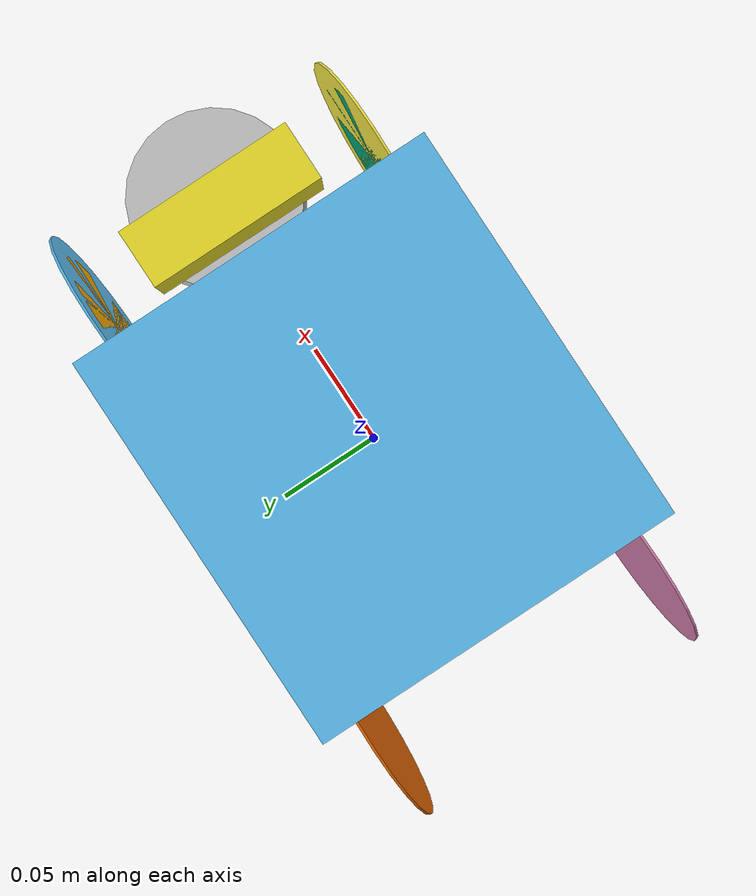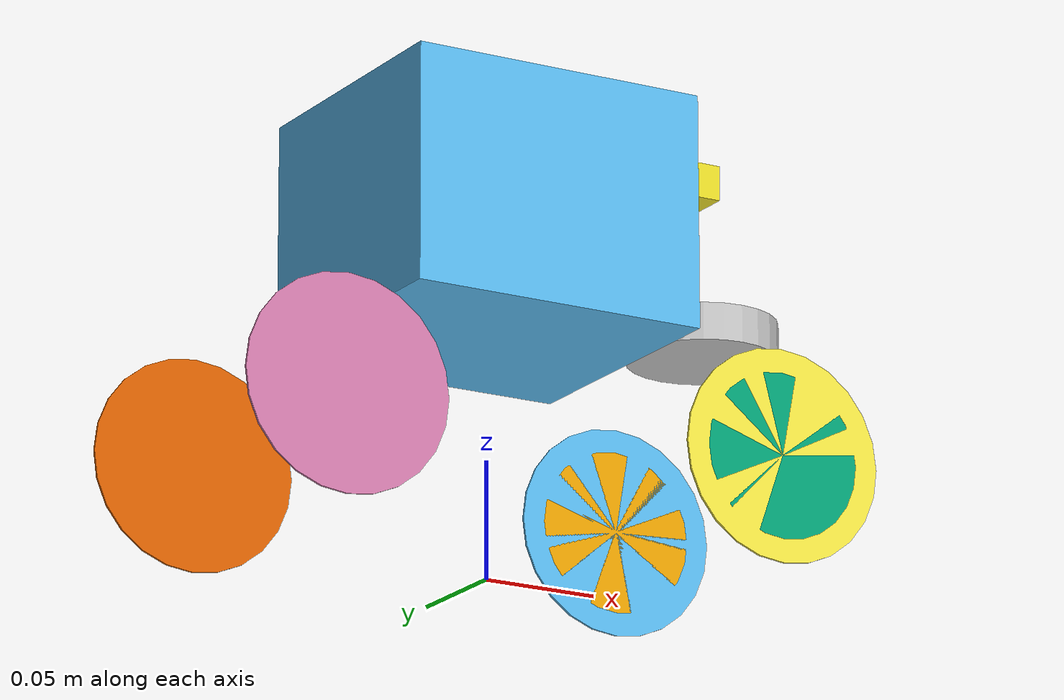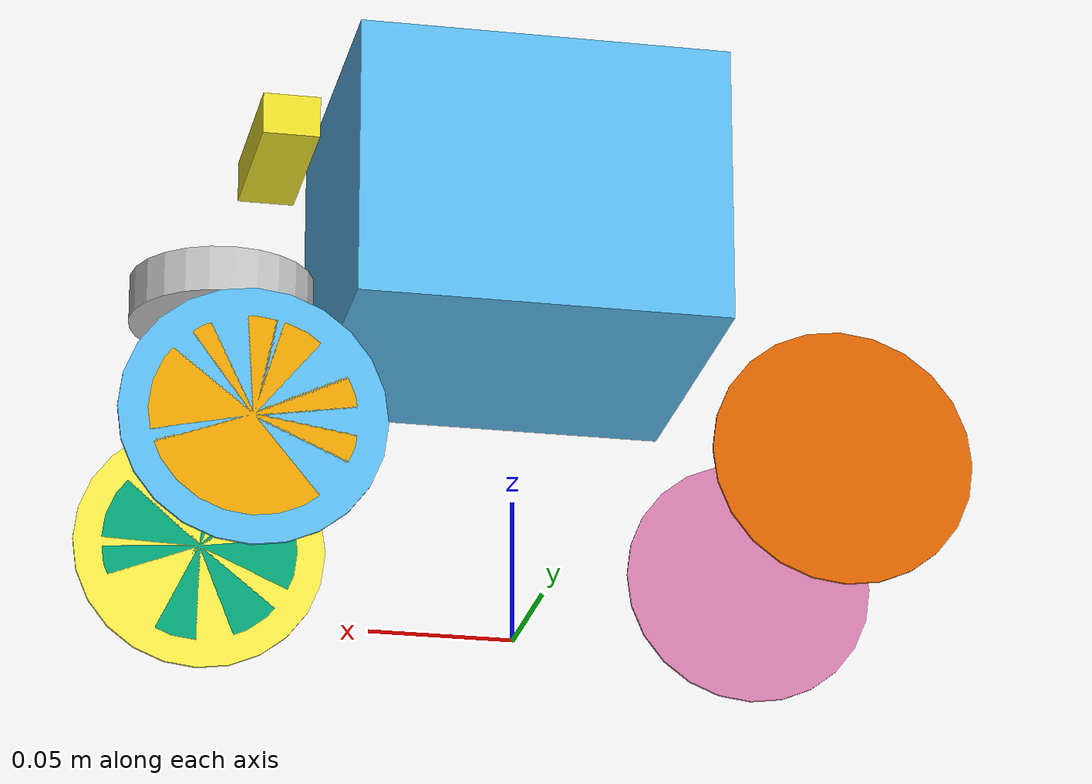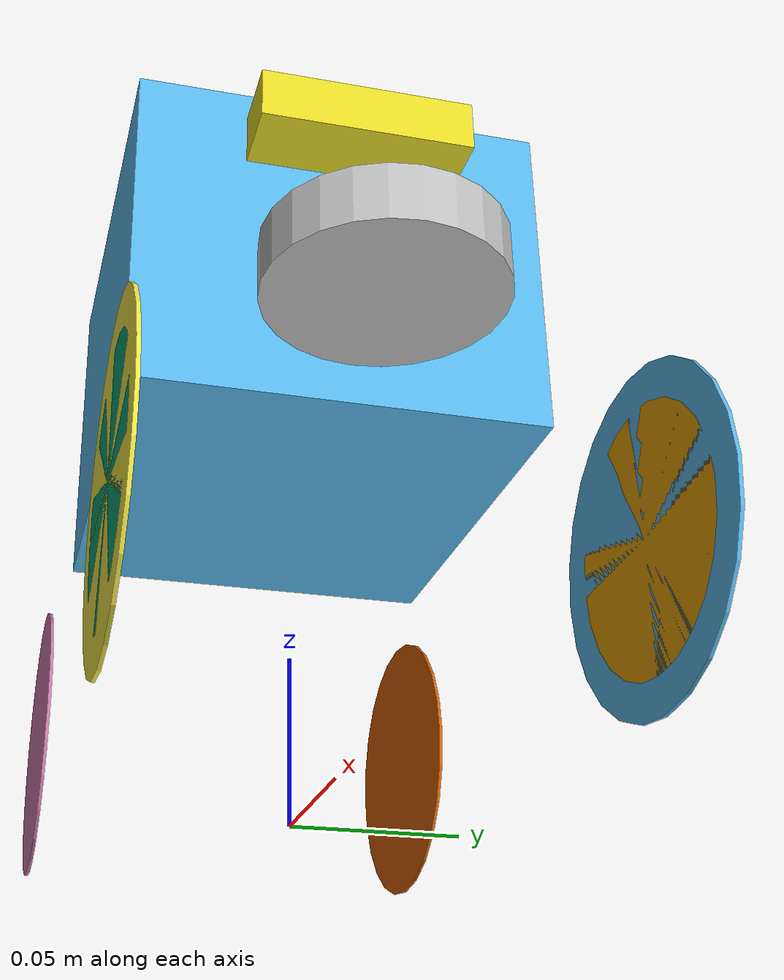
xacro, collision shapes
<?xml version="1.0"?>

<robot name="limo_ackerman" xmlns:xacro="http://ros.org/wiki/xacro">

    <xacro:arg name="robot_namespace" default="/" />
    <xacro:include filename="$(find limo_description)/urdf/limo_xacro.xacro" />
    <xacro:include filename="$(find limo_description)/urdf/limo_steering_hinge.xacro" />
    <xacro:include filename="$(find limo_description)/urdf/inertial_macros.xacro" />
    <xacro:include filename="$(find limo_description)/urdf/properties.xacro" />
    <xacro:include filename="$(find limo_description)/urdf/gazbo_control.xacro" />

    <link name="base_footprint"/>

    <joint name="base_joint" type="fixed">
        <parent link="base_footprint"/>
        <child link="base_link"/>
        <origin xyz="0.0 0.0 0.15" rpy="0 0 0"/>
    </joint>
        <!-- Base link -->
    <link name="base_link">
        <visual>
            <origin xyz="0 0 -0.15" rpy="0 0 1.57" />
            <geometry>
                <mesh filename="file://$(find limo_description)/meshes/limo_optimal.dae" scale="1 1 1"/>
            </geometry>
        </visual>
        <collision>
            <origin xyz="0 0 0" rpy="0 0 0" />
          <geometry>
              <box size="${base_x_size} ${base_y_size} ${base_z_size}"/>
          </geometry>
        </collision>
        <xacro:box_inertial_matrix  m="${base_mass}" w="${base_x_size}" l="${base_y_size}" h="${base_z_size}" />
    </link>

   <link name="inertial_link">
        <inertial>
            <origin xyz="0.0 0.0 0.0" />
            <mass value="${base_mass}" />
            <inertia ixx="0.0043832566666666675" ixy="0" ixz="0"
                     iyy="0.004832360833333334" iyz="0"
                     izz="0.005622784166666667" />
        </inertial>
    </link>

    <joint name="inertial_joint" type="fixed">
        <origin xyz="0 0 0" rpy="0 0 0" />
        <parent link="base_link" />
        <child link="inertial_link" />
    </joint>

    <xacro:limo_laser parent_prefix="base_link" frame_prefix="laser">
        <origin xyz="0.103 0 -0.034" rpy="0 0 0"/>
    </xacro:limo_laser>

    <xacro:limo_depth_camera parent_prefix="base_link" frame_prefix="depth_camera">
        <origin xyz="0.084 0 0.026" rpy="0 0 0"/>
    </xacro:limo_depth_camera>

    <xacro:limo_imu parent_prefix="base_link" frame_prefix="imu">
        <origin xyz="0.0 0 -0.1" rpy="0 0 0"/>
    </xacro:limo_imu>

    <!-- Front Wheel -->

    <xacro:limo_left_steering_hinge parent_prefix="base_link" wheel_prefix="front_left">
        <origin xyz="${wheelbase/2} ${track/2} ${wheel_vertical_offset}" rpy="0 0  0" />
    </xacro:limo_left_steering_hinge>

    <xacro:limo_right_steering_hinge parent_prefix="base_link" wheel_prefix="front_right">
        <origin xyz="${wheelbase/2} ${-track/2} ${wheel_vertical_offset}" rpy="${M_PI} 0 0" />
    </xacro:limo_right_steering_hinge>

    <link name="main_steering_link">
        <inertial>
            <mass value="0.25" />
            <inertia ixx="0.00525" ixy="0" ixz="0" iyy="0.00035" iyz="0" izz="0.00525" />
            <origin xyz="0 0 0" />

        </inertial>
        <visual>
            <origin xyz="0 0 0" rpy="0 0 0" />
            <geometry>
                <mesh filename="file://$(find limo_description)/meshes/steering.dae" scale="1 1 1"/>
            </geometry>
        </visual>

    </link>

    <joint name="main_steering" type="revolute">
        <parent link="base_link"/>
        <child link="main_steering_link"/>
        <origin xyz="${wheelbase/2} 0.0 ${wheel_vertical_offset * -2.0}" rpy="${M_PI} 0 0" />
        <axis xyz="0 0 -1" />
        <limit lower="-0.523598767" upper="0.523598767" effort="1000" velocity="10.0" />
        <dynamics damping="0.0" friction="0.0"/>
    </joint>

    <!-- Back Wheel -->

    <xacro:limo_wheel parent_prefix="base_link" wheel_prefix="rear_left" reflect="1" fixed_on="false">
        <origin xyz="${-wheelbase/2} ${track/2} ${wheel_vertical_offset}" rpy="0 0 0" />
    </xacro:limo_wheel>

    <xacro:limo_wheel parent_prefix="base_link" wheel_prefix="rear_right" reflect="-1" fixed_on="false">
        <origin xyz="${-wheelbase/2} ${-track/2} ${wheel_vertical_offset}" rpy="${M_PI} 0 0" />
    </xacro:limo_wheel>

</robot>

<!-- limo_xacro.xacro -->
<robot name="limo_xacro" xmlns:xacro="http://ros.org/wiki/xacro">

    <xacro:macro name="limo_wheel" params="parent_prefix wheel_prefix reflect *joint_pose visual_on:=true fixed_on:=false">
        <link name="${wheel_prefix}_wheel_link">
            <xacro:if value="${visual_on}">
                <visual>
                    <origin xyz="0 0 0" rpy="0 0 0" />
                    <geometry>
                        <mesh filename="file://$(find limo_description)/meshes/limo_optimal_wheels.dae" />
                    </geometry>
                </visual>
            </xacro:if>
            <collision>
              <origin xyz="0 ${wheel_length/2} 0" rpy="1.57 0 0" />
              <geometry>
                  <cylinder length="${wheel_length}" radius="${wheel_radius}" />
              </geometry>
            </collision>
            <xacro:cylinder_inertial_matrix  m="${wheel_mass}" r="${wheel_radius}"  h="${wheel_length}" />
        </link>

        <xacro:if value="${fixed_on}">
            <joint name="${wheel_prefix}_wheel" type="fixed">
                <parent link="${parent_prefix}"/>
                <child link="${wheel_prefix}_wheel_link"/>
                <xacro:insert_block name="joint_pose"/>
            </joint>
        </xacro:if>
        <xacro:unless value="${fixed_on}">
            <joint name="${wheel_prefix}_wheel" type="continuous">
                <parent link="${parent_prefix}"/>
                <child link="${wheel_prefix}_wheel_link"/>
                <xacro:insert_block name="joint_pose"/>
                <axis xyz="0 ${reflect*1} 0"/>
                <limit effort="100.0" velocity="10.0"/>
            </joint>
        </xacro:unless>

    </xacro:macro>

    <xacro:macro name="limo_laser" params="parent_prefix frame_prefix *joint_pose">
        <link name='${frame_prefix}_link'>
            <pose>0 0 0 0 0 0</pose>
            <inertial>
                <mass value="0.1"/>
                <origin xyz="0.0 0 0" rpy="0 0 0"/>
                <inertia
                    ixx="1e-6" ixy="0" ixz="0"
                    iyy="1e-6" iyz="0"
                    izz="1e-6"
                />
            </inertial>
            <visual name='laser_visual'>
                <origin xyz="0 0 0" rpy="0 0 0"/>
                <geometry>
                    <cylinder radius="0.02" length="0.01"/>
                </geometry>
                <material name='laser_material'>
                    <color rgba="0.75 0.75 0.75 1" />
                    <ambient>0.1 0.1 0.1 1</ambient>
                    <diffuse>0.1 0.1 0.2 1</diffuse>
                    <specular>0 0 0 0</specular>
                    <emissive>0 0 0 1</emissive>
                </material>
            </visual>
            <collision name='laser_collision'>
                <origin xyz="0 0 0" rpy="0 0 0"/>
                <geometry>
                    <cylinder radius="0.032" length="0.016"/>
                </geometry>
            </collision>
        </link>
        <joint type="fixed" name="laser_joint">
            <xacro:insert_block name="joint_pose"/>
            <child link="${frame_prefix}_link"/>
            <parent link="${parent_prefix}"/>
        </joint>
        <gazebo reference="${frame_prefix}_link">
            <material>Gazebo/Yellow</material>
            <sensor name="laser" type="ray">
            <always_on>true</always_on>
            <visualize>false</visualize>
            <update_rate>10</update_rate>
            <ray>
                <scan>
                <horizontal>
                    <samples>120</samples>
                    <resolution>1.000000</resolution>
                    <min_angle>-3.14159</min_angle>
                    <max_angle>3.14159</max_angle>
                </horizontal>
                </scan>
                <range>
                <min>0.3</min>
                <max>15.0</max>
                <resolution>0.015</resolution>
                </range>
                <noise>
                <type>gaussian</type>
                <mean>0.0</mean>
                <stddev>0.01</stddev>
                </noise>
            </ray>
            <plugin name="scan" filename="libgazebo_ros_ray_sensor.so">
                <ros>
                <remapping>~/out:=scan</remapping>
                </ros>
                <output_type>sensor_msgs/LaserScan</output_type>
                <frame_name>laser_link</frame_name>
            </plugin>
            </sensor>
        </gazebo>
    </xacro:macro>

    <xacro:macro name="limo_depth_camera" params="parent_prefix frame_prefix *joint_pose">
        <link name='${frame_prefix}_link'>
            <pose>0 0 0 0 0 0</pose>
            <inertial>
                <mass value="0.1"/>
                <origin xyz="0.0 0 0" rpy="0 0 0"/>
                <inertia
                    ixx="1e-6" ixy="0" ixz="0"
                    iyy="1e-6" iyz="0"
                    izz="1e-6"
                />
            </inertial>
            <collision name='depth_camera_collision'>
                <origin xyz="0 0 0" rpy="0 0 0"/>
                <geometry>
                    <box size="0.02 0.06 0.015"/>
                </geometry>
            </collision>

        </link>

        <joint type="fixed" name="depth_camera_joint">
            <xacro:insert_block name="joint_pose"/>
            <child link="${frame_prefix}_link"/>
            <parent link="${parent_prefix}"/>
        </joint>
        <link name="depth_link"></link>

        <joint name="${frame_prefix}_to_camera_joint" type="fixed">
            <origin xyz="0 0 0" rpy="${-M_PI/2} 0 ${-M_PI/2} "/>
            <parent link="${frame_prefix}_link"/>
            <child link="depth_link"/>
        </joint>

            <link name="camera_depth_optical_frame"/>

        <joint name="camera_depth_optical_joint" type="fixed">
            <origin xyz="0 0 0" rpy="${-M_PI/2} 0 ${-M_PI/2}" />
            <parent link="depth_camera_link" />
            <child link="camera_depth_optical_frame" />
        </joint>

        <gazebo reference="${frame_prefix}_link">
            <material>Gazebo/Yellow</material>
            <sensor name="sensor_camera" type="depth">
                <pose>0.0 0.0 0.0 0.0 0.0 0.0</pose>
                <always_on>1</always_on>
                <update_rate>10</update_rate>
                <visualize>1</visualize>

                <camera name="limo_camera">
                <image>
                    <format>R8G8B8</format>
                    <width>400</width>
                    <height>400</height>
                </image>
                <clip>
                    <near>0.01</near>
                    <far>10.0</far>
                </clip>
                </camera>

                <plugin name="gazebo_ros_depth_camera_sensor" filename="libgazebo_ros_camera.so">
                    <ros>
                        <namespace>/limo</namespace>
                        <ros-args>
                            <remap from="limo_camera/image_raw" to="limo_camera/image"/>
                            <remap from="limo_camera/image_depth" to="limo_camera/depth/camera_image_depth"/>
                            <remap from="limo_camera/camera_info" to="limo_camera/camera_info_raw"/>
                            <remap from="limo_camera/camera_info_depth" to="limo_camera/camera_info_depth"/>
                            <remap from="limo_camera/points" to="limo_camera/camera_points"/>
                        </ros-args>
                    </ros>
                    <camera_name>depth_camera_link</camera_name>
                    <frame_name>camera_depth_optical_frame</frame_name>
                    <hack_baseline>0.07</hack_baseline>
                    <min_depth>0.001</min_depth>
                </plugin>

            </sensor>
        </gazebo>
    </xacro:macro>

    <xacro:macro name="limo_imu" params="parent_prefix frame_prefix  *joint_pose">
        <link name='${frame_prefix}_link'>
            <pose>0 0 0 0 0 0</pose>
            <inertial>
                <mass value="0.01"/>
                <origin xyz="0.0 0 0" rpy="0 0 0"/>
                <inertia
                    ixx="1e-7" ixy="0" ixz="0"
                    iyy="1e-7" iyz="0"
                    izz="1e-7"
                />
            </inertial>
            <visual name='imu_visual'>
                <origin xyz="0 0 0" rpy="0 0 0"/>
                <geometry>
                    <box size="0.001 0.001 0.001"/>
                </geometry>
                <material name='imu_material'>
                    <color rgba="0.75 0.75 0.75 1" />
                    <ambient>0.1 0.1 0.1 1</ambient>
                    <diffuse>0.1 0.1 0.2 1</diffuse>
                    <specular>0 0 0 0</specular>
                    <emissive>0 0 0 1</emissive>
                </material>
            </visual>
            <collision name='imu_collision'>
                <origin xyz="0 0 0" rpy="0 0 0"/>
                <geometry>
                    <box size="0.001 0.001 0.001"/>
                </geometry>
            </collision>
        </link>
        <joint type="fixed" name="imu_joint">
            <xacro:insert_block name="joint_pose"/>
            <child link="${frame_prefix}_link"/>
            <parent link="${parent_prefix}"/>
        </joint>
        <gazebo reference="imu_link">
            <gravity>true</gravity>
            <sensor name="twr_imu" type="imu">
            <always_on>true</always_on>
            <update_rate>100</update_rate>
            <visualize>true</visualize>
            <imu>
                <orientation>
                <x>
                    <noise type="gaussian">
                    <mean>0.0</mean>
                    <stddev>2e-3</stddev>
                    </noise>
                </x>
                <y>
                    <noise type="gaussian">
                    <mean>0.0</mean>
                    <stddev>2e-3</stddev>
                    </noise>
                </y>
                <z>
                    <noise type="gaussian">
                    <mean>0.0</mean>
                    <stddev>2e-3</stddev>
                    </noise>
                </z>
                </orientation>
                <angular_velocity>
                <x>
                    <noise type="gaussian">
                    <mean>0.0</mean>
                    <stddev>2e-4</stddev>
                    </noise>
                </x>
                <y>
                    <noise type="gaussian">
                    <mean>0.0</mean>
                    <stddev>2e-4</stddev>
                    </noise>
                </y>
                <z>
                    <noise type="gaussian">
                    <mean>0.0</mean>
                    <stddev>2e-4</stddev>
                    </noise>
                </z>
                </angular_velocity>
                <linear_acceleration>
                <x>
                    <noise type="gaussian">
                    <mean>0.0</mean>
                    <stddev>1.7e-2</stddev>
                    </noise>
                </x>
                <y>
                    <noise type="gaussian">
                    <mean>0.0</mean>
                    <stddev>1.7e-2</stddev>
                    </noise>
                </y>
                <z>
                    <noise type="gaussian">
                    <mean>0.0</mean>
                    <stddev>1.7e-2</stddev>
                    </noise>
                </z>
                </linear_acceleration>
            </imu>
            <plugin name="two_wheeled_robot_imu" filename="libgazebo_ros_imu_sensor.so">
                <initial_orientation_as_reference>false</initial_orientation_as_reference>
                <frame_name>imu_link</frame_name>
                <ros>
                <remapping>~/out:=imu</remapping>
                </ros>
            </plugin>
            </sensor>
        </gazebo>
    </xacro:macro>

</robot>

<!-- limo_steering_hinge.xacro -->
<robot name="limo_steering_hinge" xmlns:xacro="http://www.ros.org/wiki/xacro">

    <xacro:include filename="$(find limo_description)/urdf/inertial_macros.xacro" />
    <xacro:macro name="limo_left_steering_hinge" params="parent_prefix wheel_prefix *joint_pose">
        <link name="${wheel_prefix}">
            <inertial>
              <mass value="0.25" />
              <inertia ixx="0.00525" ixy="0" ixz="0" iyy="0.00035" iyz="0" izz="0.00525" />
              <origin xyz="0 0 0" />
            </inertial>
            <visual>
                <origin xyz="0 0 0" rpy="0 0 0" />
                <geometry>
                  <cylinder length="0.0001" radius="0.0001" />
                </geometry>
            </visual>
            <collision>
                <origin xyz="0 ${wheel_length/2} 0" rpy="1.57 0 0" />
                <geometry>
                    <cylinder length="${wheel_length}" radius="${wheel_radius-0.01}" />
                </geometry>
            </collision>
        </link>

        <joint name="${wheel_prefix}_steering" type="revolute">
            <parent link="${parent_prefix}"/>
            <child link="${wheel_prefix}"/>
            <xacro:insert_block name="joint_pose"/>
            <axis xyz="0 0 1" />
            <limit lower="-0.523598767" upper="0.523598767" effort="1000" velocity="1.0" />
            <dynamics damping="1.0" friction="0.5"/>

        </joint>

        <link name="${wheel_prefix}_wheel_link">
          <visual>
              <origin xyz="0 0 0" rpy="0 0 0" />
              <geometry>
                  <mesh filename="file://$(find limo_description)/meshes/limo_optimal_wheels.dae" />
              </geometry>
          </visual>
            <collision>
                <origin xyz="0 ${wheel_length/2} 0" rpy="1.57 0 0" />
                <geometry>
                    <cylinder length="${wheel_length}" radius="${wheel_radius}" />
                </geometry>
            </collision>
            <xacro:cylinder_inertial_matrix  m="${wheel_mass}" r="${wheel_radius}"  h="${wheel_length}" />
      </link>

        <joint name="${wheel_prefix}_wheel" type="continuous">
          <parent link="${wheel_prefix}"/>
          <child link="${wheel_prefix}_wheel_link"/>
          <origin xyz="0 0 0" rpy="0 0  0" />
          <axis xyz="0 1 0"/>
      </joint>
    </xacro:macro>

     <xacro:macro name="limo_right_steering_hinge" params="parent_prefix wheel_prefix *joint_pose">
        <link name="${wheel_prefix}">
          <inertial>
            <mass value="0.25" />
            <inertia ixx="0.00525" ixy="0" ixz="0" iyy="0.00035" iyz="0" izz="0.00525" />
            <origin xyz="0 0 0" />

          </inertial>
            <visual>
                <origin xyz="0 0 0" rpy="0 0 0" />
                <geometry>
                  <cylinder length="0.0001" radius="0.0001" />
                </geometry>
            </visual>
            <collision>
                <origin xyz="0 ${wheel_length/2} 0" rpy="1.57 0 0" />
                <geometry>
                    <cylinder length="${wheel_length}" radius="${wheel_radius-0.01}" />
                </geometry>
            </collision>
        </link>

        <joint name="${wheel_prefix}_steering" type="revolute">
            <parent link="${parent_prefix}"/>
            <child link="${wheel_prefix}"/>
            <xacro:insert_block name="joint_pose"/>
            <axis xyz="0 0 -1"/>
            <limit lower="-0.523598767" upper="0.523598767" effort="1000" velocity="1.0" />
            <dynamics damping="1.0" friction="0.5"/>
        </joint>

        <link name="front_right_wheel_link">
          <visual>
              <origin xyz="0 0 0" rpy="0 0 0" />
              <geometry>
                  <mesh filename="file://$(find limo_description)/meshes/limo_optimal_wheels.dae" />
              </geometry>
          </visual>
          <collision>
            <origin xyz="0 ${wheel_length/2} 0" rpy="1.57 0 0" />
            <geometry>
                <cylinder length="${wheel_length}" radius="${wheel_radius}" />
            </geometry>
          </collision>
          <xacro:cylinder_inertial_matrix  m="${wheel_mass}" r="${wheel_radius}"  h="${wheel_length}" />
      </link>

      <joint name="${wheel_prefix}_wheel" type="continuous">
          <parent link="${wheel_prefix}"/>
          <child link="front_right_wheel_link"/>
          <origin xyz="0 0 0" rpy="0 0  0" />
          <axis xyz="0 -1 0"/>
      </joint>
    </xacro:macro>
</robot>

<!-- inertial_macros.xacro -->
<robot xmlns:xacro="http://ros.org/wiki/xacro">

    <xacro:macro name="sphere_inertial_matrix" params="m r">
        <inertial>
            <origin xyz="0.0 0.0 0.0" />
            <mass value="${m}" />
            <inertia ixx="${2*m*r*r/5}" ixy="0" ixz="0"
                     iyy="${2*m*r*r/5}" iyz="0"
                     izz="${2*m*r*r/5}" />
        </inertial>
    </xacro:macro>
    <!-- Zylinder -->
    <xacro:macro name="cylinder_inertial_matrix" params="m r h">
        <inertial>
            <origin xyz="0.0 0.0 0.0" />
            <mass value="${m}" />
            <inertia ixx="${m*(3*r*r+h*h)/12}" ixy = "0" ixz = "0"
                     iyy="${m*(3*r*r+h*h)/12}" iyz = "0"
                     izz="${m*r*r/2}" />
        </inertial>
    </xacro:macro>
    <!-- Quader -->
    <xacro:macro name="box_inertial_matrix" params="m w l h">
        <inertial>
            <origin xyz="0.0 0.0 0.0" />
            <mass value="${m}" />
            <inertia ixx="${m*(w*w+h*h)/12}" ixy = "0" ixz = "0"
                     iyy="${m*(h*h+l*l)/12}" iyz = "0"
                     izz="${m*(w*w+l*l)/12}" />
        </inertial>
    </xacro:macro>

</robot>

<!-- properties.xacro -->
<robot xmlns:xacro="http://www.ros.org/wiki/xacro">
    <!-- Variables -->
    <xacro:property name="M_PI" value="3.14159"/>

    <!-- Vehicle Geometries -->
    <xacro:property name="base_x_size" value="0.13" />
    <xacro:property name="base_y_size" value="0.12" />
    <xacro:property name="base_z_size" value="0.10" />

    <xacro:property name="wheelbase" value="0.2"/>
    <xacro:property name="track" value="0.13"/>
    <xacro:property name="wheel_vertical_offset" value="-0.10" />
    <xacro:property name="base_mass" value="2.1557"/>

    <xacro:property name="wheel_mass" value="0.5" />
    <xacro:property name="wheel_length" value="0.001" />
    <xacro:property name="wheel_radius" value="0.045" />
</robot>
